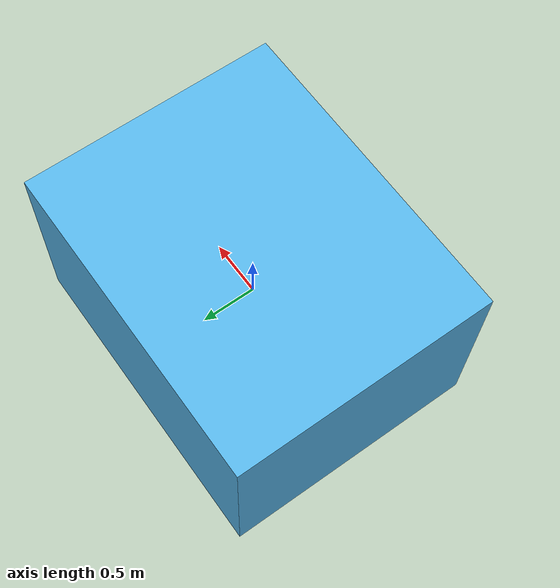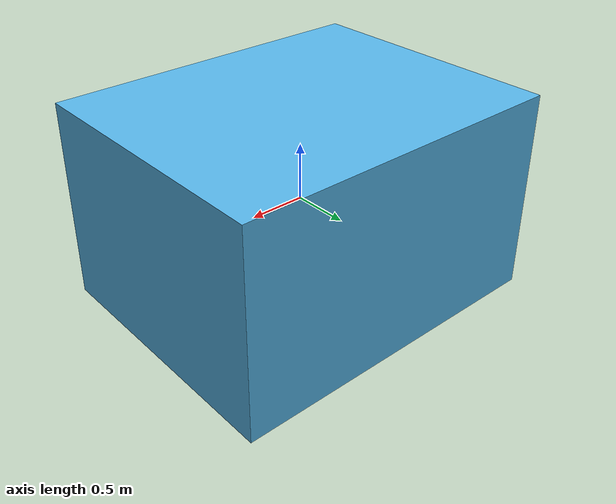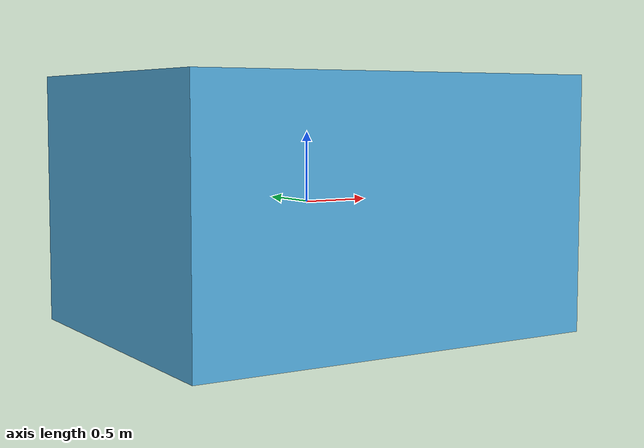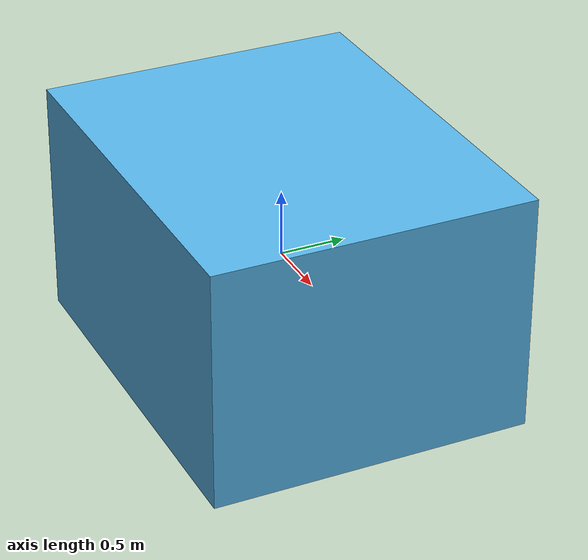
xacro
<?xml version="1.0"?>
<robot xmlns:xacro="http://www.ros.org/wiki/xacro" name="npc">

  <xacro:property name="scale_factor" value="6.0" />

  <!-- root link, on the ground just below the model origin -->
  <link name="base_footprint">
   <visual>
      <origin xyz="0 0 0" rpy="0 0 0" />
      <geometry>
        <box size="0.001 0.001 0.001" />
      </geometry>
    </visual>
  </link>

  <joint name="base_link_joint" type="fixed">
    <origin xyz="0.0 0 0" rpy="0 0 0" />
    <parent link="base_footprint"/>
    <child link="base_link" />
  </joint>

  <!-- the model -->
  <link name="base_link">
    <inertial>
      <mass value="50" />
      <origin xyz="0 0 0" />
      <inertia ixx="50.0" ixy="0.0" ixz="0.0"
        iyy="50.0" iyz="0.0"
        izz="50.0" />
    </inertial>
    <visual>
      <geometry>
        <box size="${scale_factor*0.5} ${scale_factor*0.4} ${scale_factor*0.3}" /> <!-- does not need to match collision -->
      </geometry>
    </visual>
    <collision>
      <origin xyz="0 0 0" />
      <geometry>
        <box size="${scale_factor*0.5} ${scale_factor*0.4} ${scale_factor*0.3}" /> <!-- does not need to match collision -->
      </geometry>
    </collision>
  </link>

  <gazebo>
    <plugin name="object_controller" filename="libgazebo_ros_planar_move.so">
      <alwaysOn>true</alwaysOn>
      <updateRate>100</updateRate>
      <commandTopic>cmd_vel</commandTopic>
      <odometryTopic>odom</odometryTopic>
      <odometryFrame>odom</odometryFrame>
      <odometryRate>50.0</odometryRate>
      <robotBaseFrame>base_footprint</robotBaseFrame>
      <publishTF>true</publishTF>
      <cmdTimeout>10.0</cmdTimeout>
    </plugin>
  </gazebo>

</robot>
